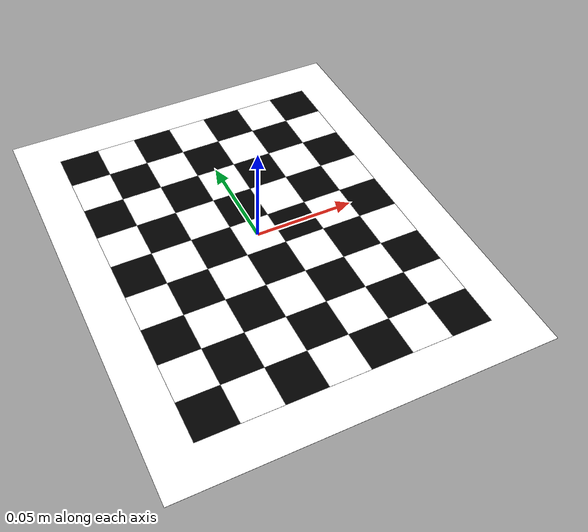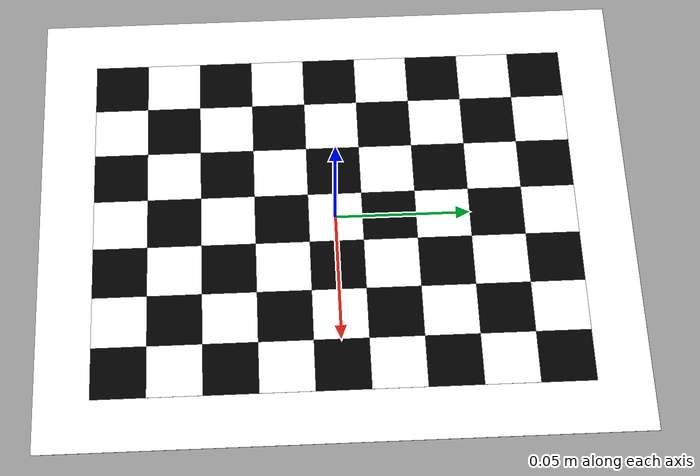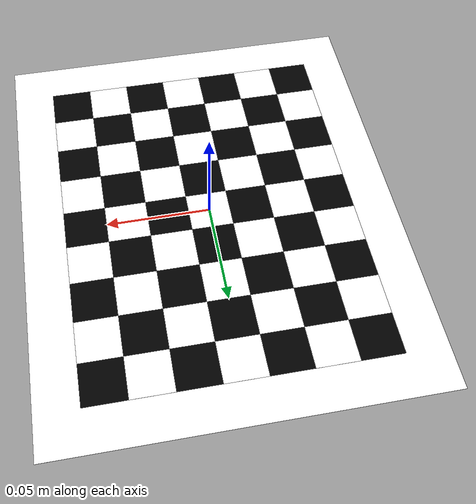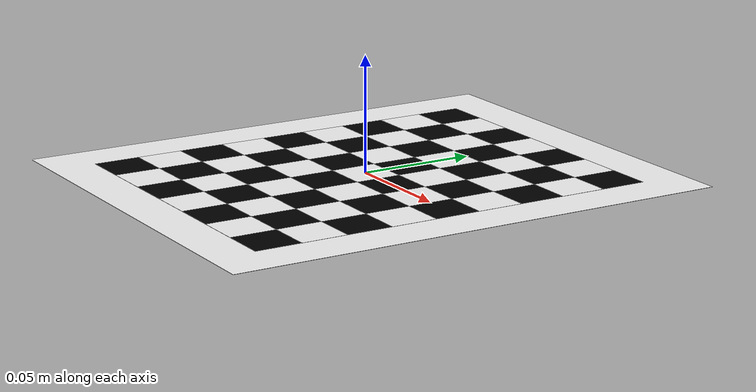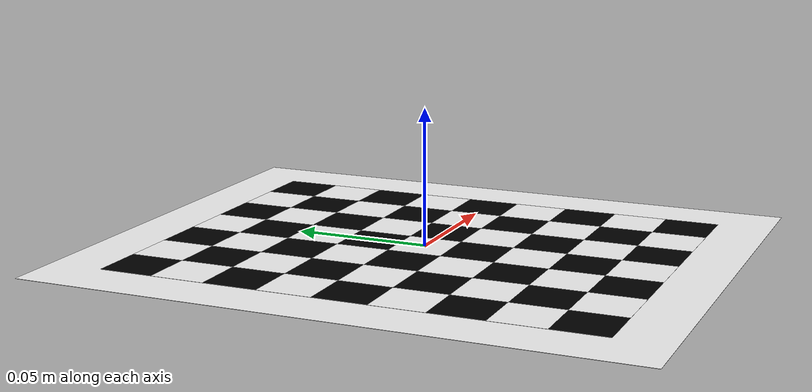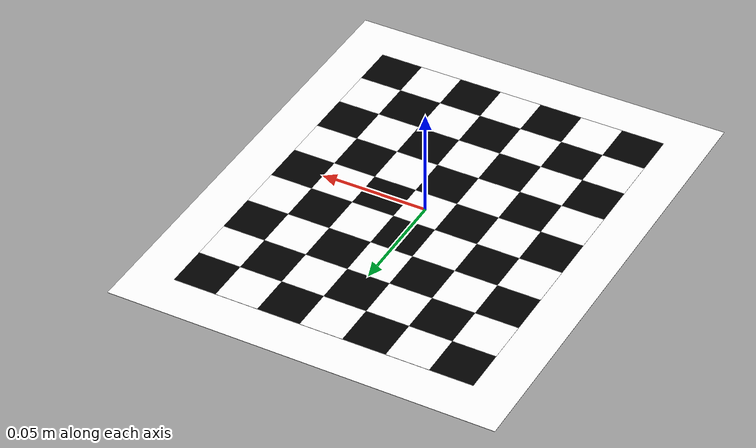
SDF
<?xml version="1.0"?>
<sdf version="1.4">
  <model name="checkerboard_7_9_0_02">
  <plugin name="gazebo_ros_state" filename="libgazebo_ros_state.so">
  <robotNamespace>/gazebo</robotNamespace>
  </plugin>
  <static>false</static>
  <link name="checkerboard_7_9_0_02_body">
      <visual name="checker_0_0">
        <pose>-0.060000000000000005 -0.08 0 0 0 0</pose>
        <geometry>
          <box>
            <size>0.02 0.02 0.0002</size>
          </box>
        </geometry>
        <material>
          <ambient>0 0 0 1</ambient>
          <diffuse>0 0 0 1</diffuse>
          <specular>0 0 0 1</specular>
          <emissive>0 0 0 1</emissive>
        </material>
      </visual>
      <visual name="checker_0_1">
        <pose>-0.060000000000000005 -0.06 0 0 0 0</pose>
        <geometry>
          <box>
            <size>0.02 0.02 0.0002</size>
          </box>
        </geometry>
        <material>
          <ambient>1 1 1 1</ambient>
          <diffuse>1 1 1 1</diffuse>
          <specular>1 1 1 1</specular>
          <emissive>1 1 1 1</emissive>
        </material>
      </visual>
      <visual name="checker_0_2">
        <pose>-0.060000000000000005 -0.039999999999999994 0 0 0 0</pose>
        <geometry>
          <box>
            <size>0.02 0.02 0.0002</size>
          </box>
        </geometry>
        <material>
          <ambient>0 0 0 1</ambient>
          <diffuse>0 0 0 1</diffuse>
          <specular>0 0 0 1</specular>
          <emissive>0 0 0 1</emissive>
        </material>
      </visual>
      <visual name="checker_0_3">
        <pose>-0.060000000000000005 -0.020000000000000004 0 0 0 0</pose>
        <geometry>
          <box>
            <size>0.02 0.02 0.0002</size>
          </box>
        </geometry>
        <material>
          <ambient>1 1 1 1</ambient>
          <diffuse>1 1 1 1</diffuse>
          <specular>1 1 1 1</specular>
          <emissive>1 1 1 1</emissive>
        </material>
      </visual>
      <visual name="checker_0_4">
        <pose>-0.060000000000000005 0.0 0 0 0 0</pose>
        <geometry>
          <box>
            <size>0.02 0.02 0.0002</size>
          </box>
        </geometry>
        <material>
          <ambient>0 0 0 1</ambient>
          <diffuse>0 0 0 1</diffuse>
          <specular>0 0 0 1</specular>
          <emissive>0 0 0 1</emissive>
        </material>
      </visual>
      <visual name="checker_0_5">
        <pose>-0.060000000000000005 0.020000000000000004 0 0 0 0</pose>
        <geometry>
          <box>
            <size>0.02 0.02 0.0002</size>
          </box>
        </geometry>
        <material>
          <ambient>1 1 1 1</ambient>
          <diffuse>1 1 1 1</diffuse>
          <specular>1 1 1 1</specular>
          <emissive>1 1 1 1</emissive>
        </material>
      </visual>
      <visual name="checker_0_6">
        <pose>-0.060000000000000005 0.04000000000000001 0 0 0 0</pose>
        <geometry>
          <box>
            <size>0.02 0.02 0.0002</size>
          </box>
        </geometry>
        <material>
          <ambient>0 0 0 1</ambient>
          <diffuse>0 0 0 1</diffuse>
          <specular>0 0 0 1</specular>
          <emissive>0 0 0 1</emissive>
        </material>
      </visual>
      <visual name="checker_0_7">
        <pose>-0.060000000000000005 0.060000000000000026 0 0 0 0</pose>
        <geometry>
          <box>
            <size>0.02 0.02 0.0002</size>
          </box>
        </geometry>
        <material>
          <ambient>1 1 1 1</ambient>
          <diffuse>1 1 1 1</diffuse>
          <specular>1 1 1 1</specular>
          <emissive>1 1 1 1</emissive>
        </material>
      </visual>
      <visual name="checker_0_8">
        <pose>-0.060000000000000005 0.08000000000000002 0 0 0 0</pose>
        <geometry>
          <box>
            <size>0.02 0.02 0.0002</size>
          </box>
        </geometry>
        <material>
          <ambient>0 0 0 1</ambient>
          <diffuse>0 0 0 1</diffuse>
          <specular>0 0 0 1</specular>
          <emissive>0 0 0 1</emissive>
        </material>
      </visual>
      <visual name="checker_1_0">
        <pose>-0.04000000000000001 -0.08 0 0 0 0</pose>
        <geometry>
          <box>
            <size>0.02 0.02 0.0002</size>
          </box>
        </geometry>
        <material>
          <ambient>1 1 1 1</ambient>
          <diffuse>1 1 1 1</diffuse>
          <specular>1 1 1 1</specular>
          <emissive>1 1 1 1</emissive>
        </material>
      </visual>
      <visual name="checker_1_1">
        <pose>-0.04000000000000001 -0.06 0 0 0 0</pose>
        <geometry>
          <box>
            <size>0.02 0.02 0.0002</size>
          </box>
        </geometry>
        <material>
          <ambient>0 0 0 1</ambient>
          <diffuse>0 0 0 1</diffuse>
          <specular>0 0 0 1</specular>
          <emissive>0 0 0 1</emissive>
        </material>
      </visual>
      <visual name="checker_1_2">
        <pose>-0.04000000000000001 -0.039999999999999994 0 0 0 0</pose>
        <geometry>
          <box>
            <size>0.02 0.02 0.0002</size>
          </box>
        </geometry>
        <material>
          <ambient>1 1 1 1</ambient>
          <diffuse>1 1 1 1</diffuse>
          <specular>1 1 1 1</specular>
          <emissive>1 1 1 1</emissive>
        </material>
      </visual>
      <visual name="checker_1_3">
        <pose>-0.04000000000000001 -0.020000000000000004 0 0 0 0</pose>
        <geometry>
          <box>
            <size>0.02 0.02 0.0002</size>
          </box>
        </geometry>
        <material>
          <ambient>0 0 0 1</ambient>
          <diffuse>0 0 0 1</diffuse>
          <specular>0 0 0 1</specular>
          <emissive>0 0 0 1</emissive>
        </material>
      </visual>
      <visual name="checker_1_4">
        <pose>-0.04000000000000001 0.0 0 0 0 0</pose>
        <geometry>
          <box>
            <size>0.02 0.02 0.0002</size>
          </box>
        </geometry>
        <material>
          <ambient>1 1 1 1</ambient>
          <diffuse>1 1 1 1</diffuse>
          <specular>1 1 1 1</specular>
          <emissive>1 1 1 1</emissive>
        </material>
      </visual>
      <visual name="checker_1_5">
        <pose>-0.04000000000000001 0.020000000000000004 0 0 0 0</pose>
        <geometry>
          <box>
            <size>0.02 0.02 0.0002</size>
          </box>
        </geometry>
        <material>
          <ambient>0 0 0 1</ambient>
          <diffuse>0 0 0 1</diffuse>
          <specular>0 0 0 1</specular>
          <emissive>0 0 0 1</emissive>
        </material>
      </visual>
      <visual name="checker_1_6">
        <pose>-0.04000000000000001 0.04000000000000001 0 0 0 0</pose>
        <geometry>
          <box>
            <size>0.02 0.02 0.0002</size>
          </box>
        </geometry>
        <material>
          <ambient>1 1 1 1</ambient>
          <diffuse>1 1 1 1</diffuse>
          <specular>1 1 1 1</specular>
          <emissive>1 1 1 1</emissive>
        </material>
      </visual>
      <visual name="checker_1_7">
        <pose>-0.04000000000000001 0.060000000000000026 0 0 0 0</pose>
        <geometry>
          <box>
            <size>0.02 0.02 0.0002</size>
          </box>
        </geometry>
        <material>
          <ambient>0 0 0 1</ambient>
          <diffuse>0 0 0 1</diffuse>
          <specular>0 0 0 1</specular>
          <emissive>0 0 0 1</emissive>
        </material>
      </visual>
      <visual name="checker_1_8">
        <pose>-0.04000000000000001 0.08000000000000002 0 0 0 0</pose>
        <geometry>
          <box>
            <size>0.02 0.02 0.0002</size>
          </box>
        </geometry>
        <material>
          <ambient>1 1 1 1</ambient>
          <diffuse>1 1 1 1</diffuse>
          <specular>1 1 1 1</specular>
          <emissive>1 1 1 1</emissive>
        </material>
      </visual>
      <visual name="checker_2_0">
        <pose>-0.020000000000000004 -0.08 0 0 0 0</pose>
        <geometry>
          <box>
            <size>0.02 0.02 0.0002</size>
          </box>
        </geometry>
        <material>
          <ambient>0 0 0 1</ambient>
          <diffuse>0 0 0 1</diffuse>
          <specular>0 0 0 1</specular>
          <emissive>0 0 0 1</emissive>
        </material>
      </visual>
      <visual name="checker_2_1">
        <pose>-0.020000000000000004 -0.06 0 0 0 0</pose>
        <geometry>
          <box>
            <size>0.02 0.02 0.0002</size>
          </box>
        </geometry>
        <material>
          <ambient>1 1 1 1</ambient>
          <diffuse>1 1 1 1</diffuse>
          <specular>1 1 1 1</specular>
          <emissive>1 1 1 1</emissive>
        </material>
      </visual>
      <visual name="checker_2_2">
        <pose>-0.020000000000000004 -0.039999999999999994 0 0 0 0</pose>
        <geometry>
          <box>
            <size>0.02 0.02 0.0002</size>
          </box>
        </geometry>
        <material>
          <ambient>0 0 0 1</ambient>
          <diffuse>0 0 0 1</diffuse>
          <specular>0 0 0 1</specular>
          <emissive>0 0 0 1</emissive>
        </material>
      </visual>
      <visual name="checker_2_3">
        <pose>-0.020000000000000004 -0.020000000000000004 0 0 0 0</pose>
        <geometry>
          <box>
            <size>0.02 0.02 0.0002</size>
          </box>
        </geometry>
        <material>
          <ambient>1 1 1 1</ambient>
          <diffuse>1 1 1 1</diffuse>
          <specular>1 1 1 1</specular>
          <emissive>1 1 1 1</emissive>
        </material>
      </visual>
      <visual name="checker_2_4">
        <pose>-0.020000000000000004 0.0 0 0 0 0</pose>
        <geometry>
          <box>
            <size>0.02 0.02 0.0002</size>
          </box>
        </geometry>
        <material>
          <ambient>0 0 0 1</ambient>
          <diffuse>0 0 0 1</diffuse>
          <specular>0 0 0 1</specular>
          <emissive>0 0 0 1</emissive>
        </material>
      </visual>
      <visual name="checker_2_5">
        <pose>-0.020000000000000004 0.020000000000000004 0 0 0 0</pose>
        <geometry>
          <box>
            <size>0.02 0.02 0.0002</size>
          </box>
        </geometry>
        <material>
          <ambient>1 1 1 1</ambient>
          <diffuse>1 1 1 1</diffuse>
          <specular>1 1 1 1</specular>
          <emissive>1 1 1 1</emissive>
        </material>
      </visual>
      <visual name="checker_2_6">
        <pose>-0.020000000000000004 0.04000000000000001 0 0 0 0</pose>
        <geometry>
          <box>
            <size>0.02 0.02 0.0002</size>
          </box>
        </geometry>
        <material>
          <ambient>0 0 0 1</ambient>
          <diffuse>0 0 0 1</diffuse>
          <specular>0 0 0 1</specular>
          <emissive>0 0 0 1</emissive>
        </material>
      </visual>
      <visual name="checker_2_7">
        <pose>-0.020000000000000004 0.060000000000000026 0 0 0 0</pose>
        <geometry>
          <box>
            <size>0.02 0.02 0.0002</size>
          </box>
        </geometry>
        <material>
          <ambient>1 1 1 1</ambient>
          <diffuse>1 1 1 1</diffuse>
          <specular>1 1 1 1</specular>
          <emissive>1 1 1 1</emissive>
        </material>
      </visual>
      <visual name="checker_2_8">
        <pose>-0.020000000000000004 0.08000000000000002 0 0 0 0</pose>
        <geometry>
          <box>
            <size>0.02 0.02 0.0002</size>
          </box>
        </geometry>
        <material>
          <ambient>0 0 0 1</ambient>
          <diffuse>0 0 0 1</diffuse>
          <specular>0 0 0 1</specular>
          <emissive>0 0 0 1</emissive>
        </material>
      </visual>
      <visual name="checker_3_0">
        <pose>-1.3877787807814457e-17 -0.08 0 0 0 0</pose>
        <geometry>
          <box>
            <size>0.02 0.02 0.0002</size>
          </box>
        </geometry>
        <material>
          <ambient>1 1 1 1</ambient>
          <diffuse>1 1 1 1</diffuse>
          <specular>1 1 1 1</specular>
          <emissive>1 1 1 1</emissive>
        </material>
      </visual>
      <visual name="checker_3_1">
        <pose>-1.3877787807814457e-17 -0.06 0 0 0 0</pose>
        <geometry>
          <box>
            <size>0.02 0.02 0.0002</size>
          </box>
        </geometry>
        <material>
          <ambient>0 0 0 1</ambient>
          <diffuse>0 0 0 1</diffuse>
          <specular>0 0 0 1</specular>
          <emissive>0 0 0 1</emissive>
        </material>
      </visual>
      <visual name="checker_3_2">
        <pose>-1.3877787807814457e-17 -0.039999999999999994 0 0 0 0</pose>
        <geometry>
          <box>
            <size>0.02 0.02 0.0002</size>
          </box>
        </geometry>
        <material>
          <ambient>1 1 1 1</ambient>
          <diffuse>1 1 1 1</diffuse>
          <specular>1 1 1 1</specular>
          <emissive>1 1 1 1</emissive>
        </material>
      </visual>
      <visual name="checker_3_3">
        <pose>-1.3877787807814457e-17 -0.020000000000000004 0 0 0 0</pose>
        <geometry>
          <box>
            <size>0.02 0.02 0.0002</size>
          </box>
        </geometry>
        <material>
          <ambient>0 0 0 1</ambient>
          <diffuse>0 0 0 1</diffuse>
          <specular>0 0 0 1</specular>
          <emissive>0 0 0 1</emissive>
        </material>
      </visual>
      <visual name="checker_3_4">
        <pose>-1.3877787807814457e-17 0.0 0 0 0 0</pose>
        <geometry>
          <box>
            <size>0.02 0.02 0.0002</size>
          </box>
        </geometry>
        <material>
          <ambient>1 1 1 1</ambient>
          <diffuse>1 1 1 1</diffuse>
          <specular>1 1 1 1</specular>
          <emissive>1 1 1 1</emissive>
        </material>
      </visual>
      <visual name="checker_3_5">
        <pose>-1.3877787807814457e-17 0.020000000000000004 0 0 0 0</pose>
        <geometry>
          <box>
            <size>0.02 0.02 0.0002</size>
          </box>
        </geometry>
        <material>
          <ambient>0 0 0 1</ambient>
          <diffuse>0 0 0 1</diffuse>
          <specular>0 0 0 1</specular>
          <emissive>0 0 0 1</emissive>
        </material>
      </visual>
      <visual name="checker_3_6">
        <pose>-1.3877787807814457e-17 0.04000000000000001 0 0 0 0</pose>
        <geometry>
          <box>
            <size>0.02 0.02 0.0002</size>
          </box>
        </geometry>
        <material>
          <ambient>1 1 1 1</ambient>
          <diffuse>1 1 1 1</diffuse>
          <specular>1 1 1 1</specular>
          <emissive>1 1 1 1</emissive>
        </material>
      </visual>
      <visual name="checker_3_7">
        <pose>-1.3877787807814457e-17 0.060000000000000026 0 0 0 0</pose>
        <geometry>
          <box>
            <size>0.02 0.02 0.0002</size>
          </box>
        </geometry>
        <material>
          <ambient>0 0 0 1</ambient>
          <diffuse>0 0 0 1</diffuse>
          <specular>0 0 0 1</specular>
          <emissive>0 0 0 1</emissive>
        </material>
      </visual>
      <visual name="checker_3_8">
        <pose>-1.3877787807814457e-17 0.08000000000000002 0 0 0 0</pose>
        <geometry>
          <box>
            <size>0.02 0.02 0.0002</size>
          </box>
        </geometry>
        <material>
          <ambient>1 1 1 1</ambient>
          <diffuse>1 1 1 1</diffuse>
          <specular>1 1 1 1</specular>
          <emissive>1 1 1 1</emissive>
        </material>
      </visual>
      <visual name="checker_4_0">
        <pose>0.01999999999999999 -0.08 0 0 0 0</pose>
        <geometry>
          <box>
            <size>0.02 0.02 0.0002</size>
          </box>
        </geometry>
        <material>
          <ambient>0 0 0 1</ambient>
          <diffuse>0 0 0 1</diffuse>
          <specular>0 0 0 1</specular>
          <emissive>0 0 0 1</emissive>
        </material>
      </visual>
      <visual name="checker_4_1">
        <pose>0.01999999999999999 -0.06 0 0 0 0</pose>
        <geometry>
          <box>
            <size>0.02 0.02 0.0002</size>
          </box>
        </geometry>
        <material>
          <ambient>1 1 1 1</ambient>
          <diffuse>1 1 1 1</diffuse>
          <specular>1 1 1 1</specular>
          <emissive>1 1 1 1</emissive>
        </material>
      </visual>
      <visual name="checker_4_2">
        <pose>0.01999999999999999 -0.039999999999999994 0 0 0 0</pose>
        <geometry>
          <box>
            <size>0.02 0.02 0.0002</size>
          </box>
        </geometry>
        <material>
          <ambient>0 0 0 1</ambient>
          <diffuse>0 0 0 1</diffuse>
          <specular>0 0 0 1</specular>
          <emissive>0 0 0 1</emissive>
        </material>
      </visual>
      <visual name="checker_4_3">
        <pose>0.01999999999999999 -0.020000000000000004 0 0 0 0</pose>
        <geometry>
          <box>
            <size>0.02 0.02 0.0002</size>
          </box>
        </geometry>
        <material>
          <ambient>1 1 1 1</ambient>
          <diffuse>1 1 1 1</diffuse>
          <specular>1 1 1 1</specular>
          <emissive>1 1 1 1</emissive>
        </material>
      </visual>
      <visual name="checker_4_4">
        <pose>0.01999999999999999 0.0 0 0 0 0</pose>
        <geometry>
          <box>
            <size>0.02 0.02 0.0002</size>
          </box>
        </geometry>
        <material>
          <ambient>0 0 0 1</ambient>
          <diffuse>0 0 0 1</diffuse>
          <specular>0 0 0 1</specular>
          <emissive>0 0 0 1</emissive>
        </material>
      </visual>
      <visual name="checker_4_5">
        <pose>0.01999999999999999 0.020000000000000004 0 0 0 0</pose>
        <geometry>
          <box>
            <size>0.02 0.02 0.0002</size>
          </box>
        </geometry>
        <material>
          <ambient>1 1 1 1</ambient>
          <diffuse>1 1 1 1</diffuse>
          <specular>1 1 1 1</specular>
          <emissive>1 1 1 1</emissive>
        </material>
      </visual>
      <visual name="checker_4_6">
        <pose>0.01999999999999999 0.04000000000000001 0 0 0 0</pose>
        <geometry>
          <box>
            <size>0.02 0.02 0.0002</size>
          </box>
        </geometry>
        <material>
          <ambient>0 0 0 1</ambient>
          <diffuse>0 0 0 1</diffuse>
          <specular>0 0 0 1</specular>
          <emissive>0 0 0 1</emissive>
        </material>
      </visual>
      <visual name="checker_4_7">
        <pose>0.01999999999999999 0.060000000000000026 0 0 0 0</pose>
        <geometry>
          <box>
            <size>0.02 0.02 0.0002</size>
          </box>
        </geometry>
        <material>
          <ambient>1 1 1 1</ambient>
          <diffuse>1 1 1 1</diffuse>
          <specular>1 1 1 1</specular>
          <emissive>1 1 1 1</emissive>
        </material>
      </visual>
      <visual name="checker_4_8">
        <pose>0.01999999999999999 0.08000000000000002 0 0 0 0</pose>
        <geometry>
          <box>
            <size>0.02 0.02 0.0002</size>
          </box>
        </geometry>
        <material>
          <ambient>0 0 0 1</ambient>
          <diffuse>0 0 0 1</diffuse>
          <specular>0 0 0 1</specular>
          <emissive>0 0 0 1</emissive>
        </material>
      </visual>
      <visual name="checker_5_0">
        <pose>0.039999999999999994 -0.08 0 0 0 0</pose>
        <geometry>
          <box>
            <size>0.02 0.02 0.0002</size>
          </box>
        </geometry>
        <material>
          <ambient>1 1 1 1</ambient>
          <diffuse>1 1 1 1</diffuse>
          <specular>1 1 1 1</specular>
          <emissive>1 1 1 1</emissive>
        </material>
      </visual>
      <visual name="checker_5_1">
        <pose>0.039999999999999994 -0.06 0 0 0 0</pose>
        <geometry>
          <box>
            <size>0.02 0.02 0.0002</size>
          </box>
        </geometry>
        <material>
          <ambient>0 0 0 1</ambient>
          <diffuse>0 0 0 1</diffuse>
          <specular>0 0 0 1</specular>
          <emissive>0 0 0 1</emissive>
        </material>
      </visual>
      <visual name="checker_5_2">
        <pose>0.039999999999999994 -0.039999999999999994 0 0 0 0</pose>
        <geometry>
          <box>
            <size>0.02 0.02 0.0002</size>
          </box>
        </geometry>
        <material>
          <ambient>1 1 1 1</ambient>
          <diffuse>1 1 1 1</diffuse>
          <specular>1 1 1 1</specular>
          <emissive>1 1 1 1</emissive>
        </material>
      </visual>
      <visual name="checker_5_3">
        <pose>0.039999999999999994 -0.020000000000000004 0 0 0 0</pose>
        <geometry>
          <box>
            <size>0.02 0.02 0.0002</size>
          </box>
        </geometry>
        <material>
          <ambient>0 0 0 1</ambient>
          <diffuse>0 0 0 1</diffuse>
          <specular>0 0 0 1</specular>
          <emissive>0 0 0 1</emissive>
        </material>
      </visual>
      <visual name="checker_5_4">
        <pose>0.039999999999999994 0.0 0 0 0 0</pose>
        <geometry>
          <box>
            <size>0.02 0.02 0.0002</size>
          </box>
        </geometry>
        <material>
          <ambient>1 1 1 1</ambient>
          <diffuse>1 1 1 1</diffuse>
          <specular>1 1 1 1</specular>
          <emissive>1 1 1 1</emissive>
        </material>
      </visual>
      <visual name="checker_5_5">
        <pose>0.039999999999999994 0.020000000000000004 0 0 0 0</pose>
        <geometry>
          <box>
            <size>0.02 0.02 0.0002</size>
          </box>
        </geometry>
        <material>
          <ambient>0 0 0 1</ambient>
          <diffuse>0 0 0 1</diffuse>
          <specular>0 0 0 1</specular>
          <emissive>0 0 0 1</emissive>
        </material>
      </visual>
      <visual name="checker_5_6">
        <pose>0.039999999999999994 0.04000000000000001 0 0 0 0</pose>
        <geometry>
          <box>
            <size>0.02 0.02 0.0002</size>
          </box>
        </geometry>
        <material>
          <ambient>1 1 1 1</ambient>
          <diffuse>1 1 1 1</diffuse>
          <specular>1 1 1 1</specular>
          <emissive>1 1 1 1</emissive>
        </material>
      </visual>
      <visual name="checker_5_7">
        <pose>0.039999999999999994 0.060000000000000026 0 0 0 0</pose>
        <geometry>
          <box>
            <size>0.02 0.02 0.0002</size>
          </box>
        </geometry>
        <material>
          <ambient>0 0 0 1</ambient>
          <diffuse>0 0 0 1</diffuse>
          <specular>0 0 0 1</specular>
          <emissive>0 0 0 1</emissive>
        </material>
      </visual>
      <visual name="checker_5_8">
        <pose>0.039999999999999994 0.08000000000000002 0 0 0 0</pose>
        <geometry>
          <box>
            <size>0.02 0.02 0.0002</size>
          </box>
        </geometry>
        <material>
          <ambient>1 1 1 1</ambient>
          <diffuse>1 1 1 1</diffuse>
          <specular>1 1 1 1</specular>
          <emissive>1 1 1 1</emissive>
        </material>
      </visual>
      <visual name="checker_6_0">
        <pose>0.06 -0.08 0 0 0 0</pose>
        <geometry>
          <box>
            <size>0.02 0.02 0.0002</size>
          </box>
        </geometry>
        <material>
          <ambient>0 0 0 1</ambient>
          <diffuse>0 0 0 1</diffuse>
          <specular>0 0 0 1</specular>
          <emissive>0 0 0 1</emissive>
        </material>
      </visual>
      <visual name="checker_6_1">
        <pose>0.06 -0.06 0 0 0 0</pose>
        <geometry>
          <box>
            <size>0.02 0.02 0.0002</size>
          </box>
        </geometry>
        <material>
          <ambient>1 1 1 1</ambient>
          <diffuse>1 1 1 1</diffuse>
          <specular>1 1 1 1</specular>
          <emissive>1 1 1 1</emissive>
        </material>
      </visual>
      <visual name="checker_6_2">
        <pose>0.06 -0.039999999999999994 0 0 0 0</pose>
        <geometry>
          <box>
            <size>0.02 0.02 0.0002</size>
          </box>
        </geometry>
        <material>
          <ambient>0 0 0 1</ambient>
          <diffuse>0 0 0 1</diffuse>
          <specular>0 0 0 1</specular>
          <emissive>0 0 0 1</emissive>
        </material>
      </visual>
      <visual name="checker_6_3">
        <pose>0.06 -0.020000000000000004 0 0 0 0</pose>
        <geometry>
          <box>
            <size>0.02 0.02 0.0002</size>
          </box>
        </geometry>
        <material>
          <ambient>1 1 1 1</ambient>
          <diffuse>1 1 1 1</diffuse>
          <specular>1 1 1 1</specular>
          <emissive>1 1 1 1</emissive>
        </material>
      </visual>
      <visual name="checker_6_4">
        <pose>0.06 0.0 0 0 0 0</pose>
        <geometry>
          <box>
            <size>0.02 0.02 0.0002</size>
          </box>
        </geometry>
        <material>
          <ambient>0 0 0 1</ambient>
          <diffuse>0 0 0 1</diffuse>
          <specular>0 0 0 1</specular>
          <emissive>0 0 0 1</emissive>
        </material>
      </visual>
      <visual name="checker_6_5">
        <pose>0.06 0.020000000000000004 0 0 0 0</pose>
        <geometry>
          <box>
            <size>0.02 0.02 0.0002</size>
          </box>
        </geometry>
        <material>
          <ambient>1 1 1 1</ambient>
          <diffuse>1 1 1 1</diffuse>
          <specular>1 1 1 1</specular>
          <emissive>1 1 1 1</emissive>
        </material>
      </visual>
      <visual name="checker_6_6">
        <pose>0.06 0.04000000000000001 0 0 0 0</pose>
        <geometry>
          <box>
            <size>0.02 0.02 0.0002</size>
          </box>
        </geometry>
        <material>
          <ambient>0 0 0 1</ambient>
          <diffuse>0 0 0 1</diffuse>
          <specular>0 0 0 1</specular>
          <emissive>0 0 0 1</emissive>
        </material>
      </visual>
      <visual name="checker_6_7">
        <pose>0.06 0.060000000000000026 0 0 0 0</pose>
        <geometry>
          <box>
            <size>0.02 0.02 0.0002</size>
          </box>
        </geometry>
        <material>
          <ambient>1 1 1 1</ambient>
          <diffuse>1 1 1 1</diffuse>
          <specular>1 1 1 1</specular>
          <emissive>1 1 1 1</emissive>
        </material>
      </visual>
      <visual name="checker_6_8">
        <pose>0.06 0.08000000000000002 0 0 0 0</pose>
        <geometry>
          <box>
            <size>0.02 0.02 0.0002</size>
          </box>
        </geometry>
        <material>
          <ambient>0 0 0 1</ambient>
          <diffuse>0 0 0 1</diffuse>
          <specular>0 0 0 1</specular>
          <emissive>0 0 0 1</emissive>
        </material>
      </visual>
      <visual name="checker_backdrop">
        <pose>0 0 0 0 0 0</pose>
        <geometry>
          <box>
            <size>0.18 0.22 0.0001</size>
          </box>
        </geometry>
        <material>
          <ambient>1 1 1 1</ambient>
          <diffuse>1 1 1 1</diffuse>
          <specular>1 1 1 1</specular>
          <emissive>1 1 1 1</emissive>
        </material>
      </visual>
    </link>
  </model>
</sdf>
